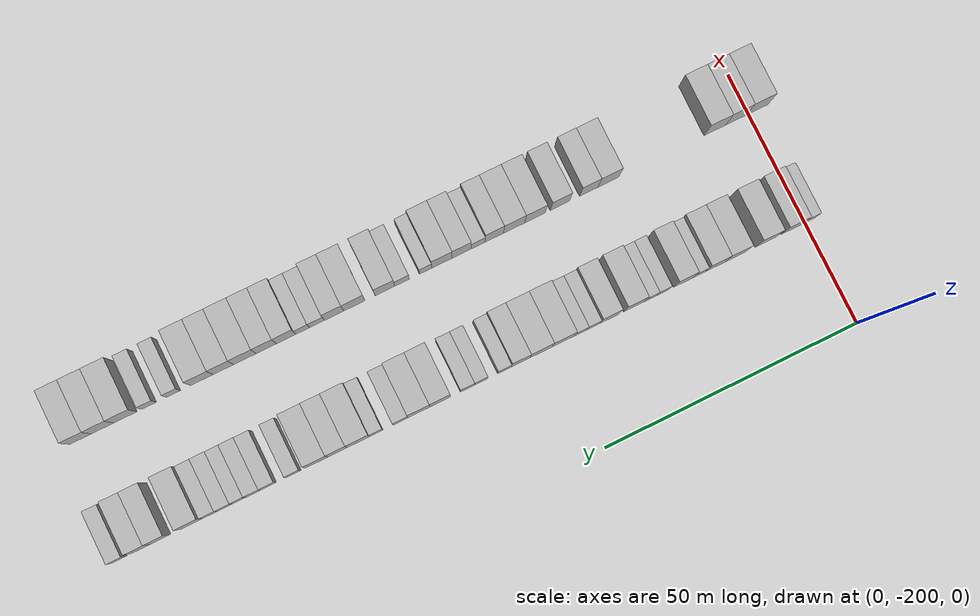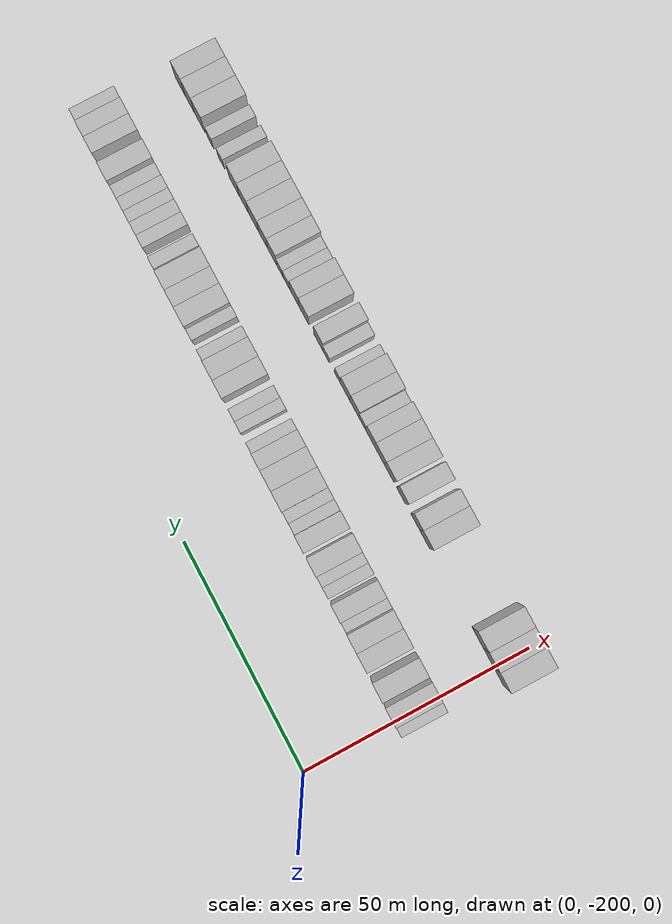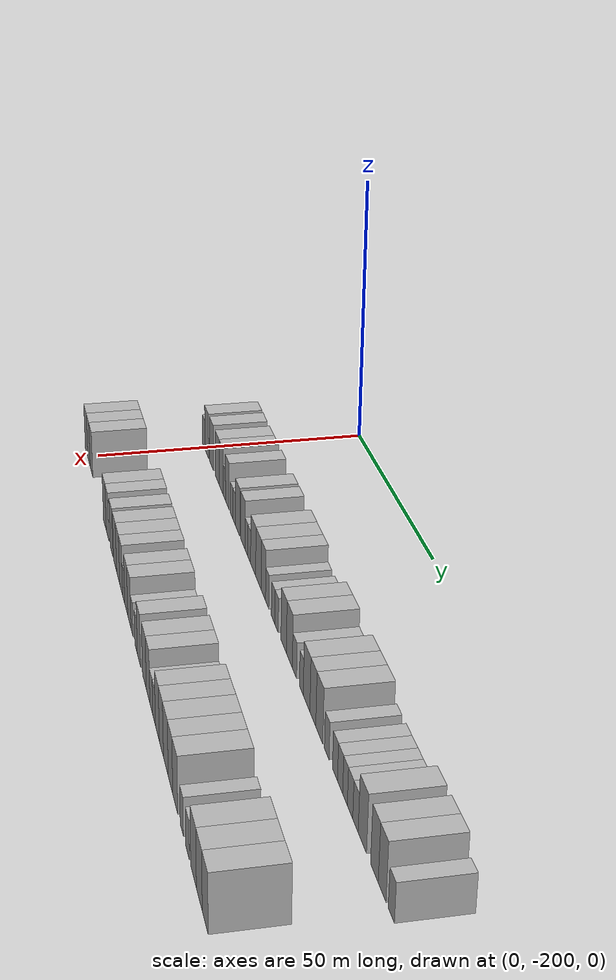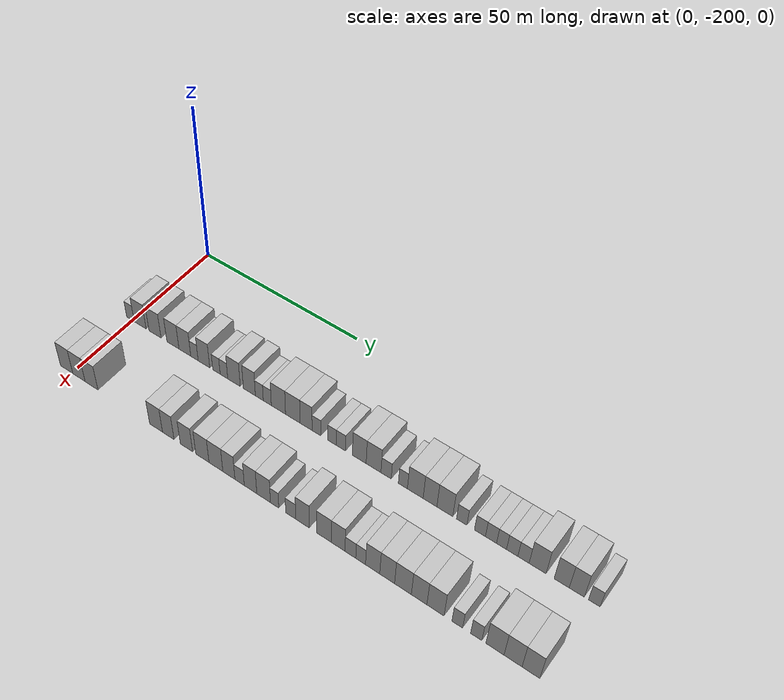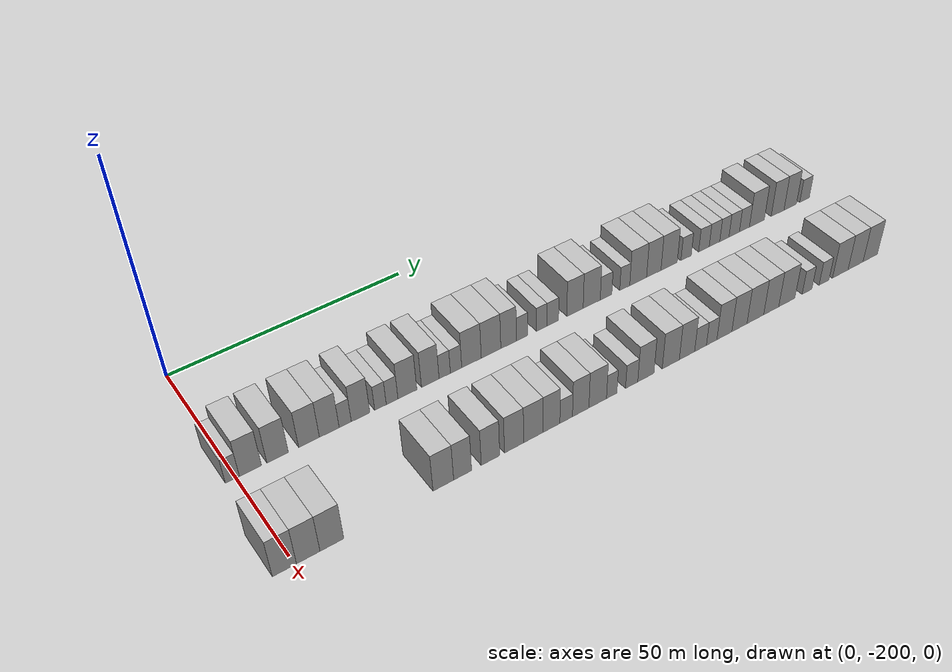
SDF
<sdf version="1.6">
 <world name="default">
  <model name="building_1">
   <static>1</static>
   <pose>25.0000 -200.6891 0 0.000000 0.000000 0.000000</pose>
   <link name="link">
    <pose>0 0 3.00 0 0 0</pose>
    <collision name="collision"><geometry><box><size>10.0000 2.6218 6.0000</size></box></geometry></collision>
    <visual name="visual">
     <cast_shadows>0</cast_shadows>
     <geometry><box><size>10.0000 2.6218 6.0000</size></box></geometry>
     <material>
      <script>
       <uri>model://HANNAS_wall/materials/scripts</uri>
       <uri>model://HANNAS_wall/materials/textures</uri>
       <name>vrc/HANNAS_wall</name>
      </script>
     </material>
    </visual>
   </link>
  </model>
  <model name="building_2">
   <static>1</static>
   <pose>25.0000 -197.2870 0 0.000000 0.000000 0.000000</pose>
   <link name="link">
    <pose>0 0 4.50 0 0 0</pose>
    <collision name="collision"><geometry><box><size>10.0000 4.1824 9.0000</size></box></geometry></collision>
    <visual name="visual">
     <cast_shadows>0</cast_shadows>
     <geometry><box><size>10.0000 4.1824 9.0000</size></box></geometry>
     <material>
      <script>
       <uri>model://HANNAS_wall/materials/scripts</uri>
       <uri>model://HANNAS_wall/materials/textures</uri>
       <name>vrc/HANNAS_wall</name>
      </script>
     </material>
    </visual>
   </link>
  </model>
  <model name="building_3">
   <static>1</static>
   <pose>25.0000 -192.1201 0 0.000000 0.000000 0.000000</pose>
   <link name="link">
    <pose>0 0 4.50 0 0 0</pose>
    <collision name="collision"><geometry><box><size>10.0000 4.1514 9.0000</size></box></geometry></collision>
    <visual name="visual">
     <cast_shadows>0</cast_shadows>
     <geometry><box><size>10.0000 4.1514 9.0000</size></box></geometry>
     <material>
      <script>
       <uri>model://HANNAS_wall/materials/scripts</uri>
       <uri>model://HANNAS_wall/materials/textures</uri>
       <name>vrc/HANNAS_wall</name>
      </script>
     </material>
    </visual>
   </link>
  </model>
  <model name="building_4">
   <static>1</static>
   <pose>25.0000 -185.9952 0 0.000000 0.000000 0.000000</pose>
   <link name="link">
    <pose>0 0 4.50 0 0 0</pose>
    <collision name="collision"><geometry><box><size>10.0000 4.0984 9.0000</size></box></geometry></collision>
    <visual name="visual">
     <cast_shadows>0</cast_shadows>
     <geometry><box><size>10.0000 4.0984 9.0000</size></box></geometry>
     <material>
      <script>
       <uri>model://HANNAS_wall/materials/scripts</uri>
       <uri>model://HANNAS_wall/materials/textures</uri>
       <name>vrc/HANNAS_wall</name>
      </script>
     </material>
    </visual>
   </link>
  </model>
  <model name="building_5">
   <static>1</static>
   <pose>25.0000 -181.9679 0 0.000000 0.000000 0.000000</pose>
   <link name="link">
    <pose>0 0 4.50 0 0 0</pose>
    <collision name="collision"><geometry><box><size>10.0000 3.9561 9.0000</size></box></geometry></collision>
    <visual name="visual">
     <cast_shadows>0</cast_shadows>
     <geometry><box><size>10.0000 3.9561 9.0000</size></box></geometry>
     <material>
      <script>
       <uri>model://HANNAS_wall/materials/scripts</uri>
       <uri>model://HANNAS_wall/materials/textures</uri>
       <name>vrc/HANNAS_wall</name>
      </script>
     </material>
    </visual>
   </link>
  </model>
  <model name="building_6">
   <static>1</static>
   <pose>25.0000 -178.7578 0 0.000000 0.000000 0.000000</pose>
   <link name="link">
    <pose>0 0 3.00 0 0 0</pose>
    <collision name="collision"><geometry><box><size>10.0000 2.4642 6.0000</size></box></geometry></collision>
    <visual name="visual">
     <cast_shadows>0</cast_shadows>
     <geometry><box><size>10.0000 2.4642 6.0000</size></box></geometry>
     <material>
      <script>
       <uri>model://HANNAS_wall/materials/scripts</uri>
       <uri>model://HANNAS_wall/materials/textures</uri>
       <name>vrc/HANNAS_wall</name>
      </script>
     </material>
    </visual>
   </link>
  </model>
  <model name="building_7">
   <static>1</static>
   <pose>25.0000 -175.6219 0 0.000000 0.000000 0.000000</pose>
   <link name="link">
    <pose>0 0 4.50 0 0 0</pose>
    <collision name="collision"><geometry><box><size>10.0000 3.8075 9.0000</size></box></geometry></collision>
    <visual name="visual">
     <cast_shadows>0</cast_shadows>
     <geometry><box><size>10.0000 3.8075 9.0000</size></box></geometry>
     <material>
      <script>
       <uri>model://HANNAS_wall/materials/scripts</uri>
       <uri>model://HANNAS_wall/materials/textures</uri>
       <name>vrc/HANNAS_wall</name>
      </script>
     </material>
    </visual>
   </link>
  </model>
  <model name="building_8">
   <static>1</static>
   <pose>25.0000 -171.5128 0 0.000000 0.000000 0.000000</pose>
   <link name="link">
    <pose>0 0 3.00 0 0 0</pose>
    <collision name="collision"><geometry><box><size>10.0000 2.4107 6.0000</size></box></geometry></collision>
    <visual name="visual">
     <cast_shadows>0</cast_shadows>
     <geometry><box><size>10.0000 2.4107 6.0000</size></box></geometry>
     <material>
      <script>
       <uri>model://HANNAS_wall/materials/scripts</uri>
       <uri>model://HANNAS_wall/materials/textures</uri>
       <name>vrc/HANNAS_wall</name>
      </script>
     </material>
    </visual>
   </link>
  </model>
  <model name="building_9">
   <static>1</static>
   <pose>25.0000 -169.0757 0 0.000000 0.000000 0.000000</pose>
   <link name="link">
    <pose>0 0 3.00 0 0 0</pose>
    <collision name="collision"><geometry><box><size>10.0000 2.4634 6.0000</size></box></geometry></collision>
    <visual name="visual">
     <cast_shadows>0</cast_shadows>
     <geometry><box><size>10.0000 2.4634 6.0000</size></box></geometry>
     <material>
      <script>
       <uri>model://HANNAS_wall/materials/scripts</uri>
       <uri>model://HANNAS_wall/materials/textures</uri>
       <name>vrc/HANNAS_wall</name>
      </script>
     </material>
    </visual>
   </link>
  </model>
  <model name="building_10">
   <static>1</static>
   <pose>25.0000 -165.8358 0 0.000000 0.000000 0.000000</pose>
   <link name="link">
    <pose>0 0 4.50 0 0 0</pose>
    <collision name="collision"><geometry><box><size>10.0000 4.0163 9.0000</size></box></geometry></collision>
    <visual name="visual">
     <cast_shadows>0</cast_shadows>
     <geometry><box><size>10.0000 4.0163 9.0000</size></box></geometry>
     <material>
      <script>
       <uri>model://HANNAS_wall/materials/scripts</uri>
       <uri>model://HANNAS_wall/materials/textures</uri>
       <name>vrc/HANNAS_wall</name>
      </script>
     </material>
    </visual>
   </link>
  </model>
  <model name="building_11">
   <static>1</static>
   <pose>25.0000 -160.9196 0 0.000000 0.000000 0.000000</pose>
   <link name="link">
    <pose>0 0 4.50 0 0 0</pose>
    <collision name="collision"><geometry><box><size>10.0000 3.8163 9.0000</size></box></geometry></collision>
    <visual name="visual">
     <cast_shadows>0</cast_shadows>
     <geometry><box><size>10.0000 3.8163 9.0000</size></box></geometry>
     <material>
      <script>
       <uri>model://HANNAS_wall/materials/scripts</uri>
       <uri>model://HANNAS_wall/materials/textures</uri>
       <name>vrc/HANNAS_wall</name>
      </script>
     </material>
    </visual>
   </link>
  </model>
  <model name="building_12">
   <static>1</static>
   <pose>25.0000 -157.7685 0 0.000000 0.000000 0.000000</pose>
   <link name="link">
    <pose>0 0 3.00 0 0 0</pose>
    <collision name="collision"><geometry><box><size>10.0000 2.4858 6.0000</size></box></geometry></collision>
    <visual name="visual">
     <cast_shadows>0</cast_shadows>
     <geometry><box><size>10.0000 2.4858 6.0000</size></box></geometry>
     <material>
      <script>
       <uri>model://HANNAS_wall/materials/scripts</uri>
       <uri>model://HANNAS_wall/materials/textures</uri>
       <name>vrc/HANNAS_wall</name>
      </script>
     </material>
    </visual>
   </link>
  </model>
  <model name="building_13">
   <static>1</static>
   <pose>25.0000 -155.2720 0 0.000000 0.000000 0.000000</pose>
   <link name="link">
    <pose>0 0 3.00 0 0 0</pose>
    <collision name="collision"><geometry><box><size>10.0000 2.5074 6.0000</size></box></geometry></collision>
    <visual name="visual">
     <cast_shadows>0</cast_shadows>
     <geometry><box><size>10.0000 2.5074 6.0000</size></box></geometry>
     <material>
      <script>
       <uri>model://HANNAS_wall/materials/scripts</uri>
       <uri>model://HANNAS_wall/materials/textures</uri>
       <name>vrc/HANNAS_wall</name>
      </script>
     </material>
    </visual>
   </link>
  </model>
  <model name="building_14">
   <static>1</static>
   <pose>25.0000 -151.8228 0 0.000000 0.000000 0.000000</pose>
   <link name="link">
    <pose>0 0 4.50 0 0 0</pose>
    <collision name="collision"><geometry><box><size>10.0000 4.3909 9.0000</size></box></geometry></collision>
    <visual name="visual">
     <cast_shadows>0</cast_shadows>
     <geometry><box><size>10.0000 4.3909 9.0000</size></box></geometry>
     <material>
      <script>
       <uri>model://HANNAS_wall/materials/scripts</uri>
       <uri>model://HANNAS_wall/materials/textures</uri>
       <name>vrc/HANNAS_wall</name>
      </script>
     </material>
    </visual>
   </link>
  </model>
  <model name="building_15">
   <static>1</static>
   <pose>25.0000 -147.3984 0 0.000000 0.000000 0.000000</pose>
   <link name="link">
    <pose>0 0 4.50 0 0 0</pose>
    <collision name="collision"><geometry><box><size>10.0000 4.4581 9.0000</size></box></geometry></collision>
    <visual name="visual">
     <cast_shadows>0</cast_shadows>
     <geometry><box><size>10.0000 4.4581 9.0000</size></box></geometry>
     <material>
      <script>
       <uri>model://HANNAS_wall/materials/scripts</uri>
       <uri>model://HANNAS_wall/materials/textures</uri>
       <name>vrc/HANNAS_wall</name>
      </script>
     </material>
    </visual>
   </link>
  </model>
  <model name="building_16">
   <static>1</static>
   <pose>25.0000 -143.3528 0 0.000000 0.000000 0.000000</pose>
   <link name="link">
    <pose>0 0 4.50 0 0 0</pose>
    <collision name="collision"><geometry><box><size>10.0000 3.6331 9.0000</size></box></geometry></collision>
    <visual name="visual">
     <cast_shadows>0</cast_shadows>
     <geometry><box><size>10.0000 3.6331 9.0000</size></box></geometry>
     <material>
      <script>
       <uri>model://HANNAS_wall/materials/scripts</uri>
       <uri>model://HANNAS_wall/materials/textures</uri>
       <name>vrc/HANNAS_wall</name>
      </script>
     </material>
    </visual>
   </link>
  </model>
  <model name="building_17">
   <static>1</static>
   <pose>25.0000 -140.2241 0 0.000000 0.000000 0.000000</pose>
   <link name="link">
    <pose>0 0 3.00 0 0 0</pose>
    <collision name="collision"><geometry><box><size>10.0000 2.6244 6.0000</size></box></geometry></collision>
    <visual name="visual">
     <cast_shadows>0</cast_shadows>
     <geometry><box><size>10.0000 2.6244 6.0000</size></box></geometry>
     <material>
      <script>
       <uri>model://HANNAS_wall/materials/scripts</uri>
       <uri>model://HANNAS_wall/materials/textures</uri>
       <name>vrc/HANNAS_wall</name>
      </script>
     </material>
    </visual>
   </link>
  </model>
  <model name="building_18">
   <static>1</static>
   <pose>25.0000 -135.6285 0 0.000000 0.000000 0.000000</pose>
   <link name="link">
    <pose>0 0 3.00 0 0 0</pose>
    <collision name="collision"><geometry><box><size>10.0000 2.5668 6.0000</size></box></geometry></collision>
    <visual name="visual">
     <cast_shadows>0</cast_shadows>
     <geometry><box><size>10.0000 2.5668 6.0000</size></box></geometry>
     <material>
      <script>
       <uri>model://HANNAS_wall/materials/scripts</uri>
       <uri>model://HANNAS_wall/materials/textures</uri>
       <name>vrc/HANNAS_wall</name>
      </script>
     </material>
    </visual>
   </link>
  </model>
  <model name="building_19">
   <static>1</static>
   <pose>25.0000 -132.9644 0 0.000000 0.000000 0.000000</pose>
   <link name="link">
    <pose>0 0 3.00 0 0 0</pose>
    <collision name="collision"><geometry><box><size>10.0000 2.7615 6.0000</size></box></geometry></collision>
    <visual name="visual">
     <cast_shadows>0</cast_shadows>
     <geometry><box><size>10.0000 2.7615 6.0000</size></box></geometry>
     <material>
      <script>
       <uri>model://HANNAS_wall/materials/scripts</uri>
       <uri>model://HANNAS_wall/materials/textures</uri>
       <name>vrc/HANNAS_wall</name>
      </script>
     </material>
    </visual>
   </link>
  </model>
  <model name="building_20">
   <static>1</static>
   <pose>25.0000 -127.5885 0 0.000000 0.000000 0.000000</pose>
   <link name="link">
    <pose>0 0 4.50 0 0 0</pose>
    <collision name="collision"><geometry><box><size>10.0000 3.9903 9.0000</size></box></geometry></collision>
    <visual name="visual">
     <cast_shadows>0</cast_shadows>
     <geometry><box><size>10.0000 3.9903 9.0000</size></box></geometry>
     <material>
      <script>
       <uri>model://HANNAS_wall/materials/scripts</uri>
       <uri>model://HANNAS_wall/materials/textures</uri>
       <name>vrc/HANNAS_wall</name>
      </script>
     </material>
    </visual>
   </link>
  </model>
  <model name="building_21">
   <static>1</static>
   <pose>25.0000 -123.4686 0 0.000000 0.000000 0.000000</pose>
   <link name="link">
    <pose>0 0 4.50 0 0 0</pose>
    <collision name="collision"><geometry><box><size>10.0000 4.2495 9.0000</size></box></geometry></collision>
    <visual name="visual">
     <cast_shadows>0</cast_shadows>
     <geometry><box><size>10.0000 4.2495 9.0000</size></box></geometry>
     <material>
      <script>
       <uri>model://HANNAS_wall/materials/scripts</uri>
       <uri>model://HANNAS_wall/materials/textures</uri>
       <name>vrc/HANNAS_wall</name>
      </script>
     </material>
    </visual>
   </link>
  </model>
  <model name="building_22">
   <static>1</static>
   <pose>25.0000 -119.8854 0 0.000000 0.000000 0.000000</pose>
   <link name="link">
    <pose>0 0 3.00 0 0 0</pose>
    <collision name="collision"><geometry><box><size>10.0000 2.9168 6.0000</size></box></geometry></collision>
    <visual name="visual">
     <cast_shadows>0</cast_shadows>
     <geometry><box><size>10.0000 2.9168 6.0000</size></box></geometry>
     <material>
      <script>
       <uri>model://HANNAS_wall/materials/scripts</uri>
       <uri>model://HANNAS_wall/materials/textures</uri>
       <name>vrc/HANNAS_wall</name>
      </script>
     </material>
    </visual>
   </link>
  </model>
  <model name="building_23">
   <static>1</static>
   <pose>25.0000 -115.1533 0 0.000000 0.000000 0.000000</pose>
   <link name="link">
    <pose>0 0 3.00 0 0 0</pose>
    <collision name="collision"><geometry><box><size>10.0000 2.5473 6.0000</size></box></geometry></collision>
    <visual name="visual">
     <cast_shadows>0</cast_shadows>
     <geometry><box><size>10.0000 2.5473 6.0000</size></box></geometry>
     <material>
      <script>
       <uri>model://HANNAS_wall/materials/scripts</uri>
       <uri>model://HANNAS_wall/materials/textures</uri>
       <name>vrc/HANNAS_wall</name>
      </script>
     </material>
    </visual>
   </link>
  </model>
  <model name="building_24">
   <static>1</static>
   <pose>25.0000 -111.7035 0 0.000000 0.000000 0.000000</pose>
   <link name="link">
    <pose>0 0 4.50 0 0 0</pose>
    <collision name="collision"><geometry><box><size>10.0000 4.3524 9.0000</size></box></geometry></collision>
    <visual name="visual">
     <cast_shadows>0</cast_shadows>
     <geometry><box><size>10.0000 4.3524 9.0000</size></box></geometry>
     <material>
      <script>
       <uri>model://HANNAS_wall/materials/scripts</uri>
       <uri>model://HANNAS_wall/materials/textures</uri>
       <name>vrc/HANNAS_wall</name>
      </script>
     </material>
    </visual>
   </link>
  </model>
  <model name="building_25">
   <static>1</static>
   <pose>25.0000 -107.6400 0 0.000000 0.000000 0.000000</pose>
   <link name="link">
    <pose>0 0 4.50 0 0 0</pose>
    <collision name="collision"><geometry><box><size>10.0000 3.7747 9.0000</size></box></geometry></collision>
    <visual name="visual">
     <cast_shadows>0</cast_shadows>
     <geometry><box><size>10.0000 3.7747 9.0000</size></box></geometry>
     <material>
      <script>
       <uri>model://HANNAS_wall/materials/scripts</uri>
       <uri>model://HANNAS_wall/materials/textures</uri>
       <name>vrc/HANNAS_wall</name>
      </script>
     </material>
    </visual>
   </link>
  </model>
  <model name="building_26">
   <static>1</static>
   <pose>25.0000 -103.5955 0 0.000000 0.000000 0.000000</pose>
   <link name="link">
    <pose>0 0 4.50 0 0 0</pose>
    <collision name="collision"><geometry><box><size>10.0000 4.3142 9.0000</size></box></geometry></collision>
    <visual name="visual">
     <cast_shadows>0</cast_shadows>
     <geometry><box><size>10.0000 4.3142 9.0000</size></box></geometry>
     <material>
      <script>
       <uri>model://HANNAS_wall/materials/scripts</uri>
       <uri>model://HANNAS_wall/materials/textures</uri>
       <name>vrc/HANNAS_wall</name>
      </script>
     </material>
    </visual>
   </link>
  </model>
  <model name="building_27">
   <static>1</static>
   <pose>25.0000 -99.0458 0 0.000000 0.000000 0.000000</pose>
   <link name="link">
    <pose>0 0 3.00 0 0 0</pose>
    <collision name="collision"><geometry><box><size>10.0000 2.7853 6.0000</size></box></geometry></collision>
    <visual name="visual">
     <cast_shadows>0</cast_shadows>
     <geometry><box><size>10.0000 2.7853 6.0000</size></box></geometry>
     <material>
      <script>
       <uri>model://HANNAS_wall/materials/scripts</uri>
       <uri>model://HANNAS_wall/materials/textures</uri>
       <name>vrc/HANNAS_wall</name>
      </script>
     </material>
    </visual>
   </link>
  </model>
  <model name="building_28">
   <static>1</static>
   <pose>25.0000 -94.2055 0 0.000000 0.000000 0.000000</pose>
   <link name="link">
    <pose>0 0 3.00 0 0 0</pose>
    <collision name="collision"><geometry><box><size>10.0000 2.8954 6.0000</size></box></geometry></collision>
    <visual name="visual">
     <cast_shadows>0</cast_shadows>
     <geometry><box><size>10.0000 2.8954 6.0000</size></box></geometry>
     <material>
      <script>
       <uri>model://HANNAS_wall/materials/scripts</uri>
       <uri>model://HANNAS_wall/materials/textures</uri>
       <name>vrc/HANNAS_wall</name>
      </script>
     </material>
    </visual>
   </link>
  </model>
  <model name="building_29">
   <static>1</static>
   <pose>25.0000 -91.2992 0 0.000000 0.000000 0.000000</pose>
   <link name="link">
    <pose>0 0 3.00 0 0 0</pose>
    <collision name="collision"><geometry><box><size>10.0000 2.9172 6.0000</size></box></geometry></collision>
    <visual name="visual">
     <cast_shadows>0</cast_shadows>
     <geometry><box><size>10.0000 2.9172 6.0000</size></box></geometry>
     <material>
      <script>
       <uri>model://HANNAS_wall/materials/scripts</uri>
       <uri>model://HANNAS_wall/materials/textures</uri>
       <name>vrc/HANNAS_wall</name>
      </script>
     </material>
    </visual>
   </link>
  </model>
  <model name="building_30">
   <static>1</static>
   <pose>25.0000 -88.5461 0 0.000000 0.000000 0.000000</pose>
   <link name="link">
    <pose>0 0 3.00 0 0 0</pose>
    <collision name="collision"><geometry><box><size>10.0000 2.5892 6.0000</size></box></geometry></collision>
    <visual name="visual">
     <cast_shadows>0</cast_shadows>
     <geometry><box><size>10.0000 2.5892 6.0000</size></box></geometry>
     <material>
      <script>
       <uri>model://HANNAS_wall/materials/scripts</uri>
       <uri>model://HANNAS_wall/materials/textures</uri>
       <name>vrc/HANNAS_wall</name>
      </script>
     </material>
    </visual>
   </link>
  </model>
  <model name="building_31">
   <static>1</static>
   <pose>25.0000 -85.7914 0 0.000000 0.000000 0.000000</pose>
   <link name="link">
    <pose>0 0 3.00 0 0 0</pose>
    <collision name="collision"><geometry><box><size>10.0000 2.9202 6.0000</size></box></geometry></collision>
    <visual name="visual">
     <cast_shadows>0</cast_shadows>
     <geometry><box><size>10.0000 2.9202 6.0000</size></box></geometry>
     <material>
      <script>
       <uri>model://HANNAS_wall/materials/scripts</uri>
       <uri>model://HANNAS_wall/materials/textures</uri>
       <name>vrc/HANNAS_wall</name>
      </script>
     </material>
    </visual>
   </link>
  </model>
  <model name="building_32">
   <static>1</static>
   <pose>25.0000 -82.9009 0 0.000000 0.000000 0.000000</pose>
   <link name="link">
    <pose>0 0 3.00 0 0 0</pose>
    <collision name="collision"><geometry><box><size>10.0000 2.8608 6.0000</size></box></geometry></collision>
    <visual name="visual">
     <cast_shadows>0</cast_shadows>
     <geometry><box><size>10.0000 2.8608 6.0000</size></box></geometry>
     <material>
      <script>
       <uri>model://HANNAS_wall/materials/scripts</uri>
       <uri>model://HANNAS_wall/materials/textures</uri>
       <name>vrc/HANNAS_wall</name>
      </script>
     </material>
    </visual>
   </link>
  </model>
  <model name="building_33">
   <static>1</static>
   <pose>25.0000 -79.3252 0 0.000000 0.000000 0.000000</pose>
   <link name="link">
    <pose>0 0 4.50 0 0 0</pose>
    <collision name="collision"><geometry><box><size>10.0000 4.2905 9.0000</size></box></geometry></collision>
    <visual name="visual">
     <cast_shadows>0</cast_shadows>
     <geometry><box><size>10.0000 4.2905 9.0000</size></box></geometry>
     <material>
      <script>
       <uri>model://HANNAS_wall/materials/scripts</uri>
       <uri>model://HANNAS_wall/materials/textures</uri>
       <name>vrc/HANNAS_wall</name>
      </script>
     </material>
    </visual>
   </link>
  </model>
  <model name="building_34">
   <static>1</static>
   <pose>25.0000 -73.3015 0 0.000000 0.000000 0.000000</pose>
   <link name="link">
    <pose>0 0 4.50 0 0 0</pose>
    <collision name="collision"><geometry><box><size>10.0000 3.7569 9.0000</size></box></geometry></collision>
    <visual name="visual">
     <cast_shadows>0</cast_shadows>
     <geometry><box><size>10.0000 3.7569 9.0000</size></box></geometry>
     <material>
      <script>
       <uri>model://HANNAS_wall/materials/scripts</uri>
       <uri>model://HANNAS_wall/materials/textures</uri>
       <name>vrc/HANNAS_wall</name>
      </script>
     </material>
    </visual>
   </link>
  </model>
  <model name="building_35">
   <static>1</static>
   <pose>25.0000 -69.5739 0 0.000000 0.000000 0.000000</pose>
   <link name="link">
    <pose>0 0 4.50 0 0 0</pose>
    <collision name="collision"><geometry><box><size>10.0000 3.6982 9.0000</size></box></geometry></collision>
    <visual name="visual">
     <cast_shadows>0</cast_shadows>
     <geometry><box><size>10.0000 3.6982 9.0000</size></box></geometry>
     <material>
      <script>
       <uri>model://HANNAS_wall/materials/scripts</uri>
       <uri>model://HANNAS_wall/materials/textures</uri>
       <name>vrc/HANNAS_wall</name>
      </script>
     </material>
    </visual>
   </link>
  </model>
  <model name="building_36">
   <static>1</static>
   <pose>25.0000 -65.3007 0 0.000000 0.000000 0.000000</pose>
   <link name="link">
    <pose>0 0 3.00 0 0 0</pose>
    <collision name="collision"><geometry><box><size>10.0000 2.8482 6.0000</size></box></geometry></collision>
    <visual name="visual">
     <cast_shadows>0</cast_shadows>
     <geometry><box><size>10.0000 2.8482 6.0000</size></box></geometry>
     <material>
      <script>
       <uri>model://HANNAS_wall/materials/scripts</uri>
       <uri>model://HANNAS_wall/materials/textures</uri>
       <name>vrc/HANNAS_wall</name>
      </script>
     </material>
    </visual>
   </link>
  </model>
  <model name="building_103">
   <static>1</static>
   <pose>47.0000 -201.8520 0 0.000000 0.000000 0.000000</pose>
   <link name="link">
    <pose>0 0 4.50 0 0 0</pose>
    <collision name="collision"><geometry><box><size>10.0000 4.2960 9.0000</size></box></geometry></collision>
    <visual name="visual">
     <cast_shadows>0</cast_shadows>
     <geometry><box><size>10.0000 4.2960 9.0000</size></box></geometry>
     <material>
      <script>
       <uri>model://HANNAS_wall/materials/scripts</uri>
       <uri>model://HANNAS_wall/materials/textures</uri>
       <name>vrc/HANNAS_wall</name>
      </script>
     </material>
    </visual>
   </link>
  </model>
  <model name="building_104">
   <static>1</static>
   <pose>47.0000 -197.5798 0 0.000000 0.000000 0.000000</pose>
   <link name="link">
    <pose>0 0 4.50 0 0 0</pose>
    <collision name="collision"><geometry><box><size>10.0000 4.2483 9.0000</size></box></geometry></collision>
    <visual name="visual">
     <cast_shadows>0</cast_shadows>
     <geometry><box><size>10.0000 4.2483 9.0000</size></box></geometry>
     <material>
      <script>
       <uri>model://HANNAS_wall/materials/scripts</uri>
       <uri>model://HANNAS_wall/materials/textures</uri>
       <name>vrc/HANNAS_wall</name>
      </script>
     </material>
    </visual>
   </link>
  </model>
  <model name="building_105">
   <static>1</static>
   <pose>47.0000 -193.2596 0 0.000000 0.000000 0.000000</pose>
   <link name="link">
    <pose>0 0 4.50 0 0 0</pose>
    <collision name="collision"><geometry><box><size>10.0000 4.3921 9.0000</size></box></geometry></collision>
    <visual name="visual">
     <cast_shadows>0</cast_shadows>
     <geometry><box><size>10.0000 4.3921 9.0000</size></box></geometry>
     <material>
      <script>
       <uri>model://HANNAS_wall/materials/scripts</uri>
       <uri>model://HANNAS_wall/materials/textures</uri>
       <name>vrc/HANNAS_wall</name>
      </script>
     </material>
    </visual>
   </link>
  </model>
  <model name="building_106">
   <static>1</static>
   <pose>47.0000 -171.8290 0 0.000000 0.000000 0.000000</pose>
   <link name="link">
    <pose>0 0 4.50 0 0 0</pose>
    <collision name="collision"><geometry><box><size>10.0000 4.1564 9.0000</size></box></geometry></collision>
    <visual name="visual">
     <cast_shadows>0</cast_shadows>
     <geometry><box><size>10.0000 4.1564 9.0000</size></box></geometry>
     <material>
      <script>
       <uri>model://HANNAS_wall/materials/scripts</uri>
       <uri>model://HANNAS_wall/materials/textures</uri>
       <name>vrc/HANNAS_wall</name>
      </script>
     </material>
    </visual>
   </link>
  </model>
  <model name="building_107">
   <static>1</static>
   <pose>47.0000 -167.9172 0 0.000000 0.000000 0.000000</pose>
   <link name="link">
    <pose>0 0 4.50 0 0 0</pose>
    <collision name="collision"><geometry><box><size>10.0000 3.6672 9.0000</size></box></geometry></collision>
    <visual name="visual">
     <cast_shadows>0</cast_shadows>
     <geometry><box><size>10.0000 3.6672 9.0000</size></box></geometry>
     <material>
      <script>
       <uri>model://HANNAS_wall/materials/scripts</uri>
       <uri>model://HANNAS_wall/materials/textures</uri>
       <name>vrc/HANNAS_wall</name>
      </script>
     </material>
    </visual>
   </link>
  </model>
  <model name="building_108">
   <static>1</static>
   <pose>47.0000 -162.1541 0 0.000000 0.000000 0.000000</pose>
   <link name="link">
    <pose>0 0 4.50 0 0 0</pose>
    <collision name="collision"><geometry><box><size>10.0000 3.8590 9.0000</size></box></geometry></collision>
    <visual name="visual">
     <cast_shadows>0</cast_shadows>
     <geometry><box><size>10.0000 3.8590 9.0000</size></box></geometry>
     <material>
      <script>
       <uri>model://HANNAS_wall/materials/scripts</uri>
       <uri>model://HANNAS_wall/materials/textures</uri>
       <name>vrc/HANNAS_wall</name>
      </script>
     </material>
    </visual>
   </link>
  </model>
  <model name="building_109">
   <static>1</static>
   <pose>47.0000 -157.1764 0 0.000000 0.000000 0.000000</pose>
   <link name="link">
    <pose>0 0 4.50 0 0 0</pose>
    <collision name="collision"><geometry><box><size>10.0000 4.0964 9.0000</size></box></geometry></collision>
    <visual name="visual">
     <cast_shadows>0</cast_shadows>
     <geometry><box><size>10.0000 4.0964 9.0000</size></box></geometry>
     <material>
      <script>
       <uri>model://HANNAS_wall/materials/scripts</uri>
       <uri>model://HANNAS_wall/materials/textures</uri>
       <name>vrc/HANNAS_wall</name>
      </script>
     </material>
    </visual>
   </link>
  </model>
  <model name="building_110">
   <static>1</static>
   <pose>47.0000 -153.0147 0 0.000000 0.000000 0.000000</pose>
   <link name="link">
    <pose>0 0 4.50 0 0 0</pose>
    <collision name="collision"><geometry><box><size>10.0000 4.2272 9.0000</size></box></geometry></collision>
    <visual name="visual">
     <cast_shadows>0</cast_shadows>
     <geometry><box><size>10.0000 4.2272 9.0000</size></box></geometry>
     <material>
      <script>
       <uri>model://HANNAS_wall/materials/scripts</uri>
       <uri>model://HANNAS_wall/materials/textures</uri>
       <name>vrc/HANNAS_wall</name>
      </script>
     </material>
    </visual>
   </link>
  </model>
  <model name="building_111">
   <static>1</static>
   <pose>47.0000 -149.0693 0 0.000000 0.000000 0.000000</pose>
   <link name="link">
    <pose>0 0 4.50 0 0 0</pose>
    <collision name="collision"><geometry><box><size>10.0000 3.6635 9.0000</size></box></geometry></collision>
    <visual name="visual">
     <cast_shadows>0</cast_shadows>
     <geometry><box><size>10.0000 3.6635 9.0000</size></box></geometry>
     <material>
      <script>
       <uri>model://HANNAS_wall/materials/scripts</uri>
       <uri>model://HANNAS_wall/materials/textures</uri>
       <name>vrc/HANNAS_wall</name>
      </script>
     </material>
    </visual>
   </link>
  </model>
  <model name="building_112">
   <static>1</static>
   <pose>47.0000 -145.8360 0 0.000000 0.000000 0.000000</pose>
   <link name="link">
    <pose>0 0 3.00 0 0 0</pose>
    <collision name="collision"><geometry><box><size>10.0000 2.8031 6.0000</size></box></geometry></collision>
    <visual name="visual">
     <cast_shadows>0</cast_shadows>
     <geometry><box><size>10.0000 2.8031 6.0000</size></box></geometry>
     <material>
      <script>
       <uri>model://HANNAS_wall/materials/scripts</uri>
       <uri>model://HANNAS_wall/materials/textures</uri>
       <name>vrc/HANNAS_wall</name>
      </script>
     </material>
    </visual>
   </link>
  </model>
  <model name="building_113">
   <static>1</static>
   <pose>47.0000 -142.5800 0 0.000000 0.000000 0.000000</pose>
   <link name="link">
    <pose>0 0 4.50 0 0 0</pose>
    <collision name="collision"><geometry><box><size>10.0000 3.7090 9.0000</size></box></geometry></collision>
    <visual name="visual">
     <cast_shadows>0</cast_shadows>
     <geometry><box><size>10.0000 3.7090 9.0000</size></box></geometry>
     <material>
      <script>
       <uri>model://HANNAS_wall/materials/scripts</uri>
       <uri>model://HANNAS_wall/materials/textures</uri>
       <name>vrc/HANNAS_wall</name>
      </script>
     </material>
    </visual>
   </link>
  </model>
  <model name="building_114">
   <static>1</static>
   <pose>47.0000 -138.7130 0 0.000000 0.000000 0.000000</pose>
   <link name="link">
    <pose>0 0 4.50 0 0 0</pose>
    <collision name="collision"><geometry><box><size>10.0000 4.0249 9.0000</size></box></geometry></collision>
    <visual name="visual">
     <cast_shadows>0</cast_shadows>
     <geometry><box><size>10.0000 4.0249 9.0000</size></box></geometry>
     <material>
      <script>
       <uri>model://HANNAS_wall/materials/scripts</uri>
       <uri>model://HANNAS_wall/materials/textures</uri>
       <name>vrc/HANNAS_wall</name>
      </script>
     </material>
    </visual>
   </link>
  </model>
  <model name="building_115">
   <static>1</static>
   <pose>47.0000 -135.4911 0 0.000000 0.000000 0.000000</pose>
   <link name="link">
    <pose>0 0 3.00 0 0 0</pose>
    <collision name="collision"><geometry><box><size>10.0000 2.4189 6.0000</size></box></geometry></collision>
    <visual name="visual">
     <cast_shadows>0</cast_shadows>
     <geometry><box><size>10.0000 2.4189 6.0000</size></box></geometry>
     <material>
      <script>
       <uri>model://HANNAS_wall/materials/scripts</uri>
       <uri>model://HANNAS_wall/materials/textures</uri>
       <name>vrc/HANNAS_wall</name>
      </script>
     </material>
    </visual>
   </link>
  </model>
  <model name="building_116">
   <static>1</static>
   <pose>47.0000 -130.8391 0 0.000000 0.000000 0.000000</pose>
   <link name="link">
    <pose>0 0 3.00 0 0 0</pose>
    <collision name="collision"><geometry><box><size>10.0000 2.8852 6.0000</size></box></geometry></collision>
    <visual name="visual">
     <cast_shadows>0</cast_shadows>
     <geometry><box><size>10.0000 2.8852 6.0000</size></box></geometry>
     <material>
      <script>
       <uri>model://HANNAS_wall/materials/scripts</uri>
       <uri>model://HANNAS_wall/materials/textures</uri>
       <name>vrc/HANNAS_wall</name>
      </script>
     </material>
    </visual>
   </link>
  </model>
  <model name="building_117">
   <static>1</static>
   <pose>47.0000 -127.4654 0 0.000000 0.000000 0.000000</pose>
   <link name="link">
    <pose>0 0 4.50 0 0 0</pose>
    <collision name="collision"><geometry><box><size>10.0000 3.8622 9.0000</size></box></geometry></collision>
    <visual name="visual">
     <cast_shadows>0</cast_shadows>
     <geometry><box><size>10.0000 3.8622 9.0000</size></box></geometry>
     <material>
      <script>
       <uri>model://HANNAS_wall/materials/scripts</uri>
       <uri>model://HANNAS_wall/materials/textures</uri>
       <name>vrc/HANNAS_wall</name>
      </script>
     </material>
    </visual>
   </link>
  </model>
  <model name="building_118">
   <static>1</static>
   <pose>47.0000 -121.4506 0 0.000000 0.000000 0.000000</pose>
   <link name="link">
    <pose>0 0 4.50 0 0 0</pose>
    <collision name="collision"><geometry><box><size>10.0000 4.1674 9.0000</size></box></geometry></collision>
    <visual name="visual">
     <cast_shadows>0</cast_shadows>
     <geometry><box><size>10.0000 4.1674 9.0000</size></box></geometry>
     <material>
      <script>
       <uri>model://HANNAS_wall/materials/scripts</uri>
       <uri>model://HANNAS_wall/materials/textures</uri>
       <name>vrc/HANNAS_wall</name>
      </script>
     </material>
    </visual>
   </link>
  </model>
  <model name="building_119">
   <static>1</static>
   <pose>47.0000 -117.4754 0 0.000000 0.000000 0.000000</pose>
   <link name="link">
    <pose>0 0 4.50 0 0 0</pose>
    <collision name="collision"><geometry><box><size>10.0000 3.7830 9.0000</size></box></geometry></collision>
    <visual name="visual">
     <cast_shadows>0</cast_shadows>
     <geometry><box><size>10.0000 3.7830 9.0000</size></box></geometry>
     <material>
      <script>
       <uri>model://HANNAS_wall/materials/scripts</uri>
       <uri>model://HANNAS_wall/materials/textures</uri>
       <name>vrc/HANNAS_wall</name>
      </script>
     </material>
    </visual>
   </link>
  </model>
  <model name="building_120">
   <static>1</static>
   <pose>47.0000 -114.1008 0 0.000000 0.000000 0.000000</pose>
   <link name="link">
    <pose>0 0 3.00 0 0 0</pose>
    <collision name="collision"><geometry><box><size>10.0000 2.9662 6.0000</size></box></geometry></collision>
    <visual name="visual">
     <cast_shadows>0</cast_shadows>
     <geometry><box><size>10.0000 2.9662 6.0000</size></box></geometry>
     <material>
      <script>
       <uri>model://HANNAS_wall/materials/scripts</uri>
       <uri>model://HANNAS_wall/materials/textures</uri>
       <name>vrc/HANNAS_wall</name>
      </script>
     </material>
    </visual>
   </link>
  </model>
  <model name="building_121">
   <static>1</static>
   <pose>47.0000 -111.2982 0 0.000000 0.000000 0.000000</pose>
   <link name="link">
    <pose>0 0 3.00 0 0 0</pose>
    <collision name="collision"><geometry><box><size>10.0000 2.6391 6.0000</size></box></geometry></collision>
    <visual name="visual">
     <cast_shadows>0</cast_shadows>
     <geometry><box><size>10.0000 2.6391 6.0000</size></box></geometry>
     <material>
      <script>
       <uri>model://HANNAS_wall/materials/scripts</uri>
       <uri>model://HANNAS_wall/materials/textures</uri>
       <name>vrc/HANNAS_wall</name>
      </script>
     </material>
    </visual>
   </link>
  </model>
  <model name="building_122">
   <static>1</static>
   <pose>47.0000 -108.0629 0 0.000000 0.000000 0.000000</pose>
   <link name="link">
    <pose>0 0 4.50 0 0 0</pose>
    <collision name="collision"><geometry><box><size>10.0000 3.8315 9.0000</size></box></geometry></collision>
    <visual name="visual">
     <cast_shadows>0</cast_shadows>
     <geometry><box><size>10.0000 3.8315 9.0000</size></box></geometry>
     <material>
      <script>
       <uri>model://HANNAS_wall/materials/scripts</uri>
       <uri>model://HANNAS_wall/materials/textures</uri>
       <name>vrc/HANNAS_wall</name>
      </script>
     </material>
    </visual>
   </link>
  </model>
  <model name="building_123">
   <static>1</static>
   <pose>47.0000 -104.1759 0 0.000000 0.000000 0.000000</pose>
   <link name="link">
    <pose>0 0 4.50 0 0 0</pose>
    <collision name="collision"><geometry><box><size>10.0000 3.9425 9.0000</size></box></geometry></collision>
    <visual name="visual">
     <cast_shadows>0</cast_shadows>
     <geometry><box><size>10.0000 3.9425 9.0000</size></box></geometry>
     <material>
      <script>
       <uri>model://HANNAS_wall/materials/scripts</uri>
       <uri>model://HANNAS_wall/materials/textures</uri>
       <name>vrc/HANNAS_wall</name>
      </script>
     </material>
    </visual>
   </link>
  </model>
  <model name="building_124">
   <static>1</static>
   <pose>47.0000 -100.0063 0 0.000000 0.000000 0.000000</pose>
   <link name="link">
    <pose>0 0 4.50 0 0 0</pose>
    <collision name="collision"><geometry><box><size>10.0000 4.3966 9.0000</size></box></geometry></collision>
    <visual name="visual">
     <cast_shadows>0</cast_shadows>
     <geometry><box><size>10.0000 4.3966 9.0000</size></box></geometry>
     <material>
      <script>
       <uri>model://HANNAS_wall/materials/scripts</uri>
       <uri>model://HANNAS_wall/materials/textures</uri>
       <name>vrc/HANNAS_wall</name>
      </script>
     </material>
    </visual>
   </link>
  </model>
  <model name="building_125">
   <static>1</static>
   <pose>47.0000 -95.7952 0 0.000000 0.000000 0.000000</pose>
   <link name="link">
    <pose>0 0 4.50 0 0 0</pose>
    <collision name="collision"><geometry><box><size>10.0000 4.0256 9.0000</size></box></geometry></collision>
    <visual name="visual">
     <cast_shadows>0</cast_shadows>
     <geometry><box><size>10.0000 4.0256 9.0000</size></box></geometry>
     <material>
      <script>
       <uri>model://HANNAS_wall/materials/scripts</uri>
       <uri>model://HANNAS_wall/materials/textures</uri>
       <name>vrc/HANNAS_wall</name>
      </script>
     </material>
    </visual>
   </link>
  </model>
  <model name="building_126">
   <static>1</static>
   <pose>47.0000 -91.5848 0 0.000000 0.000000 0.000000</pose>
   <link name="link">
    <pose>0 0 4.50 0 0 0</pose>
    <collision name="collision"><geometry><box><size>10.0000 4.3953 9.0000</size></box></geometry></collision>
    <visual name="visual">
     <cast_shadows>0</cast_shadows>
     <geometry><box><size>10.0000 4.3953 9.0000</size></box></geometry>
     <material>
      <script>
       <uri>model://HANNAS_wall/materials/scripts</uri>
       <uri>model://HANNAS_wall/materials/textures</uri>
       <name>vrc/HANNAS_wall</name>
      </script>
     </material>
    </visual>
   </link>
  </model>
  <model name="building_127">
   <static>1</static>
   <pose>47.0000 -86.0427 0 0.000000 0.000000 0.000000</pose>
   <link name="link">
    <pose>0 0 3.00 0 0 0</pose>
    <collision name="collision"><geometry><box><size>10.0000 2.6888 6.0000</size></box></geometry></collision>
    <visual name="visual">
     <cast_shadows>0</cast_shadows>
     <geometry><box><size>10.0000 2.6888 6.0000</size></box></geometry>
     <material>
      <script>
       <uri>model://HANNAS_wall/materials/scripts</uri>
       <uri>model://HANNAS_wall/materials/textures</uri>
       <name>vrc/HANNAS_wall</name>
      </script>
     </material>
    </visual>
   </link>
  </model>
  <model name="building_128">
   <static>1</static>
   <pose>47.0000 -81.3049 0 0.000000 0.000000 0.000000</pose>
   <link name="link">
    <pose>0 0 3.00 0 0 0</pose>
    <collision name="collision"><geometry><box><size>10.0000 2.7868 6.0000</size></box></geometry></collision>
    <visual name="visual">
     <cast_shadows>0</cast_shadows>
     <geometry><box><size>10.0000 2.7868 6.0000</size></box></geometry>
     <material>
      <script>
       <uri>model://HANNAS_wall/materials/scripts</uri>
       <uri>model://HANNAS_wall/materials/textures</uri>
       <name>vrc/HANNAS_wall</name>
      </script>
     </material>
    </visual>
   </link>
  </model>
  <model name="building_129">
   <static>1</static>
   <pose>47.0000 -76.6890 0 0.000000 0.000000 0.000000</pose>
   <link name="link">
    <pose>0 0 4.50 0 0 0</pose>
    <collision name="collision"><geometry><box><size>10.0000 4.4450 9.0000</size></box></geometry></collision>
    <visual name="visual">
     <cast_shadows>0</cast_shadows>
     <geometry><box><size>10.0000 4.4450 9.0000</size></box></geometry>
     <material>
      <script>
       <uri>model://HANNAS_wall/materials/scripts</uri>
       <uri>model://HANNAS_wall/materials/textures</uri>
       <name>vrc/HANNAS_wall</name>
      </script>
     </material>
    </visual>
   </link>
  </model>
  <model name="building_130">
   <static>1</static>
   <pose>47.0000 -72.2933 0 0.000000 0.000000 0.000000</pose>
   <link name="link">
    <pose>0 0 4.50 0 0 0</pose>
    <collision name="collision"><geometry><box><size>10.0000 4.3464 9.0000</size></box></geometry></collision>
    <visual name="visual">
     <cast_shadows>0</cast_shadows>
     <geometry><box><size>10.0000 4.3464 9.0000</size></box></geometry>
     <material>
      <script>
       <uri>model://HANNAS_wall/materials/scripts</uri>
       <uri>model://HANNAS_wall/materials/textures</uri>
       <name>vrc/HANNAS_wall</name>
      </script>
     </material>
    </visual>
   </link>
  </model>
  <model name="building_131">
   <static>1</static>
   <pose>47.0000 -68.0062 0 0.000000 0.000000 0.000000</pose>
   <link name="link">
    <pose>0 0 4.50 0 0 0</pose>
    <collision name="collision"><geometry><box><size>10.0000 4.2278 9.0000</size></box></geometry></collision>
    <visual name="visual">
     <cast_shadows>0</cast_shadows>
     <geometry><box><size>10.0000 4.2278 9.0000</size></box></geometry>
     <material>
      <script>
       <uri>model://HANNAS_wall/materials/scripts</uri>
       <uri>model://HANNAS_wall/materials/textures</uri>
       <name>vrc/HANNAS_wall</name>
      </script>
     </material>
    </visual>
   </link>
  </model>
 </world>
</sdf>
